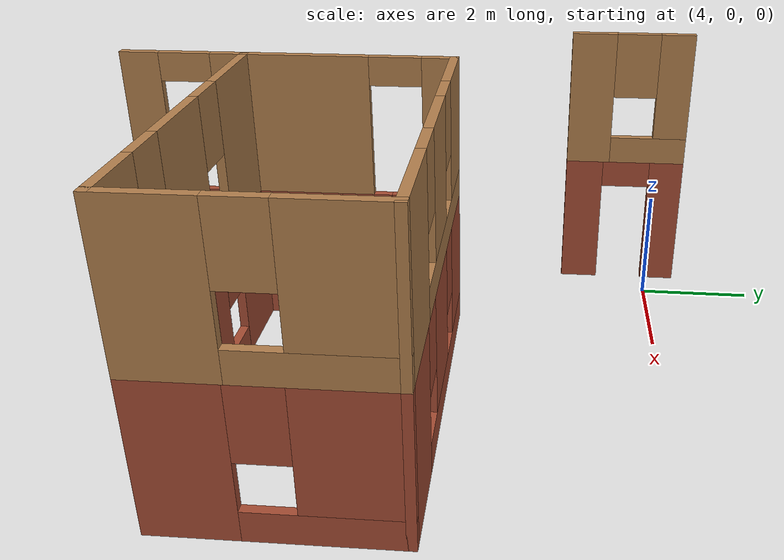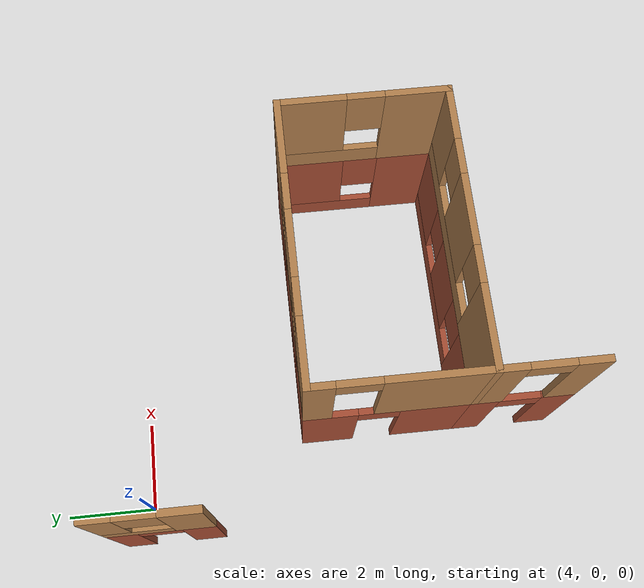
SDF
<sdf version="1.7">
 <model name="House">
  <pose>3.17663 -1.38106 0 0 -0 0</pose>
  <link name="Wall_11">
   <pose>0.125 0.883208 0 0 -0 1.5708</pose>
   <visual name="Wall_11_Visual_0">
    <pose>-0.772291 0 1.25 0 -0 0</pose>
    <geometry><box><size>0.705418 0.15 2.5</size></box></geometry>
    <material>
     <script><uri>file://media/materials/scripts/gazebo.material</uri><name>Gazebo/Bricks</name></script>
     <ambient>1 1 1 1</ambient>
    </material>
    <meta><layer>0</layer></meta>
   </visual>
   <collision name="Wall_11_Collision_0">
    <geometry><box><size>0.705418 0.15 2.5</size></box></geometry>
    <pose>-0.772291 0 1.25 0 -0 0</pose>
   </collision>
   <visual name="Wall_11_Visual_1">
    <pose>0.802709 0 1.25 0 -0 0</pose>
    <geometry><box><size>0.644582 0.15 2.5</size></box></geometry>
    <material>
     <script><uri>file://media/materials/scripts/gazebo.material</uri><name>Gazebo/Bricks</name></script>
     <ambient>1 1 1 1</ambient>
    </material>
    <meta><layer>0</layer></meta>
   </visual>
   <collision name="Wall_11_Collision_1">
    <geometry><box><size>0.644582 0.15 2.5</size></box></geometry>
    <pose>0.802709 0 1.25 0 -0 0</pose>
   </collision>
   <visual name="Wall_11_Visual_2">
    <pose>0.030418 0 2.25 0 -0 0</pose>
    <geometry><box><size>0.9 0.15 0.5</size></box></geometry>
    <material>
     <script><uri>file://media/materials/scripts/gazebo.material</uri><name>Gazebo/Bricks</name></script>
     <ambient>1 1 1 1</ambient>
    </material>
    <meta><layer>0</layer></meta>
   </visual>
   <collision name="Wall_11_Collision_2">
    <geometry><box><size>0.9 0.15 0.5</size></box></geometry>
    <pose>0.030418 0 2.25 0 -0 0</pose>
   </collision>
  </link>
  <link name="Wall_19">
   <pose>2.125 -4.06679 0 0 -0 1.5708</pose>
   <visual name="Wall_19_Visual_0">
    <pose>-1.05035 0 1.25 0 -0 0</pose>
    <geometry><box><size>1.64931 0.15 2.5</size></box></geometry>
    <material>
     <script><uri>file://media/materials/scripts/gazebo.material</uri><name>Gazebo/Bricks</name></script>
     <ambient>1 1 1 1</ambient>
    </material>
    <meta><layer>0</layer></meta>
   </visual>
   <collision name="Wall_19_Collision_0">
    <geometry><box><size>1.64931 0.15 2.5</size></box></geometry>
    <pose>-1.05035 0 1.25 0 -0 0</pose>
   </collision>
   <visual name="Wall_19_Visual_1">
    <pose>1.27465 0 1.25 0 -0 0</pose>
    <geometry><box><size>1.20069 0.15 2.5</size></box></geometry>
    <material>
     <script><uri>file://media/materials/scripts/gazebo.material</uri><name>Gazebo/Bricks</name></script>
     <ambient>1 1 1 1</ambient>
    </material>
    <meta><layer>0</layer></meta>
   </visual>
   <collision name="Wall_19_Collision_1">
    <geometry><box><size>1.20069 0.15 2.5</size></box></geometry>
    <pose>1.27465 0 1.25 0 -0 0</pose>
   </collision>
   <visual name="Wall_19_Visual_2">
    <pose>0.224308 0 2.25 0 -0 0</pose>
    <geometry><box><size>0.9 0.15 0.5</size></box></geometry>
    <material>
     <script><uri>file://media/materials/scripts/gazebo.material</uri><name>Gazebo/Bricks</name></script>
     <ambient>1 1 1 1</ambient>
    </material>
    <meta><layer>0</layer></meta>
   </visual>
   <collision name="Wall_19_Collision_2">
    <geometry><box><size>0.9 0.15 0.5</size></box></geometry>
    <pose>0.224308 0 2.25 0 -0 0</pose>
   </collision>
  </link>
  <link name="Wall_30">
   <pose>2.125 -6.91679 2.5 0 -0 1.5708</pose>
   <visual name="Wall_30_Visual_0">
    <pose>-0.781938 0 1.25 0 -0 0</pose>
    <geometry><box><size>0.686124 0.15 2.5</size></box></geometry>
    <material>
     <script><uri>file://media/materials/scripts/gazebo.material</uri><name>Gazebo/Wood</name></script>
     <ambient>1 1 1 1</ambient>
    </material>
    <meta><layer>1</layer></meta>
   </visual>
   <collision name="Wall_30_Collision_0">
    <geometry><box><size>0.686124 0.15 2.5</size></box></geometry>
    <pose>-0.781938 0 1.25 0 -0 0</pose>
   </collision>
   <visual name="Wall_30_Visual_1">
    <pose>0.793062 0 1.25 0 -0 0</pose>
    <geometry><box><size>0.663876 0.15 2.5</size></box></geometry>
    <material>
     <script><uri>file://media/materials/scripts/gazebo.material</uri><name>Gazebo/Wood</name></script>
     <ambient>1 1 1 1</ambient>
    </material>
    <meta><layer>1</layer></meta>
   </visual>
   <collision name="Wall_30_Collision_1">
    <geometry><box><size>0.663876 0.15 2.5</size></box></geometry>
    <pose>0.793062 0 1.25 0 -0 0</pose>
   </collision>
   <visual name="Wall_30_Visual_2">
    <pose>0.011124 0 2.25 0 -0 0</pose>
    <geometry><box><size>0.9 0.15 0.5</size></box></geometry>
    <material>
     <script><uri>file://media/materials/scripts/gazebo.material</uri><name>Gazebo/Wood</name></script>
     <ambient>1 1 1 1</ambient>
    </material>
    <meta><layer>1</layer></meta>
   </visual>
   <collision name="Wall_30_Collision_2">
    <geometry><box><size>0.9 0.15 0.5</size></box></geometry>
    <pose>0.011124 0 2.25 0 -0 0</pose>
   </collision>
  </link>
  <link name="Wall_31">
   <pose>5.175 -5.86679 2.5 0 -0 0</pose>
   <visual name="Wall_31_Visual_0">
    <pose>-2.22489 0 1.25 0 -0 0</pose>
    <geometry><box><size>1.80023 0.15 2.5</size></box></geometry>
    <material>
     <script><uri>file://media/materials/scripts/gazebo.material</uri><name>Gazebo/Wood</name></script>
     <ambient>1 1 1 1</ambient>
    </material>
    <meta><layer>1</layer></meta>
   </visual>
   <collision name="Wall_31_Collision_0">
    <geometry><box><size>1.80023 0.15 2.5</size></box></geometry>
    <pose>-2.22489 0 1.25 0 -0 0</pose>
   </collision>
   <visual name="Wall_31_Visual_1">
    <pose>0.900113 0 0.25 0 -0 0</pose>
    <geometry><box><size>4.44977 0.15 0.5</size></box></geometry>
    <material>
     <script><uri>file://media/materials/scripts/gazebo.material</uri><name>Gazebo/Wood</name></script>
     <ambient>1 1 1 1</ambient>
    </material>
    <meta><layer>1</layer></meta>
   </visual>
   <collision name="Wall_31_Collision_1">
    <geometry><box><size>4.44977 0.15 0.5</size></box></geometry>
    <pose>0.900113 0 0.25 0 -0 0</pose>
   </collision>
   <visual name="Wall_31_Visual_2">
    <pose>0.261927 0 1.5 0 -0 0</pose>
    <geometry><box><size>1.5734 0.15 2</size></box></geometry>
    <material>
     <script><uri>file://media/materials/scripts/gazebo.material</uri><name>Gazebo/Wood</name></script>
     <ambient>1 1 1 1</ambient>
    </material>
    <meta><layer>1</layer></meta>
   </visual>
   <collision name="Wall_31_Collision_2">
    <geometry><box><size>1.5734 0.15 2</size></box></geometry>
    <pose>0.261927 0 1.5 0 -0 0</pose>
   </collision>
   <visual name="Wall_31_Visual_3">
    <pose>2.48681 0 1.5 0 -0 0</pose>
    <geometry><box><size>1.27637 0.15 2</size></box></geometry>
    <material>
     <script><uri>file://media/materials/scripts/gazebo.material</uri><name>Gazebo/Wood</name></script>
     <ambient>1 1 1 1</ambient>
    </material>
    <meta><layer>1</layer></meta>
   </visual>
   <collision name="Wall_31_Collision_3">
    <geometry><box><size>1.27637 0.15 2</size></box></geometry>
    <pose>2.48681 0 1.5 0 -0 0</pose>
   </collision>
   <visual name="Wall_31_Visual_4">
    <pose>-0.924774 0 1.9 0 -0 0</pose>
    <geometry><box><size>0.8 0.15 1.2</size></box></geometry>
    <material>
     <script><uri>file://media/materials/scripts/gazebo.material</uri><name>Gazebo/Wood</name></script>
     <ambient>1 1 1 1</ambient>
    </material>
    <meta><layer>1</layer></meta>
   </visual>
   <collision name="Wall_31_Collision_4">
    <geometry><box><size>0.8 0.15 1.2</size></box></geometry>
    <pose>-0.924774 0 1.9 0 -0 0</pose>
   </collision>
   <visual name="Wall_31_Visual_5">
    <pose>1.44863 0 1.9 0 -0 0</pose>
    <geometry><box><size>0.8 0.15 1.2</size></box></geometry>
    <material>
     <script><uri>file://media/materials/scripts/gazebo.material</uri><name>Gazebo/Wood</name></script>
     <ambient>1 1 1 1</ambient>
    </material>
    <meta><layer>1</layer></meta>
   </visual>
   <collision name="Wall_31_Collision_5">
    <geometry><box><size>0.8 0.15 1.2</size></box></geometry>
    <pose>1.44863 0 1.9 0 -0 0</pose>
   </collision>
  </link>
  <link name="Wall_32">
   <pose>8.225 -4.06679 2.5 0 -0 1.5708</pose>
   <visual name="Wall_32_Visual_0">
    <pose>-1.1691 0 1.25 0 -0 0</pose>
    <geometry><box><size>1.4118 0.15 2.5</size></box></geometry>
    <material>
     <script><uri>file://media/materials/scripts/gazebo.material</uri><name>Gazebo/Wood</name></script>
     <ambient>1 1 1 1</ambient>
    </material>
    <meta><layer>1</layer></meta>
   </visual>
   <collision name="Wall_32_Collision_0">
    <geometry><box><size>1.4118 0.15 2.5</size></box></geometry>
    <pose>-1.1691 0 1.25 0 -0 0</pose>
   </collision>
   <visual name="Wall_32_Visual_1">
    <pose>0.705899 0 0.25 0 -0 0</pose>
    <geometry><box><size>2.3382 0.15 0.5</size></box></geometry>
    <material>
     <script><uri>file://media/materials/scripts/gazebo.material</uri><name>Gazebo/Wood</name></script>
     <ambient>1 1 1 1</ambient>
    </material>
    <meta><layer>1</layer></meta>
   </visual>
   <collision name="Wall_32_Collision_1">
    <geometry><box><size>2.3382 0.15 0.5</size></box></geometry>
    <pose>0.705899 0 0.25 0 -0 0</pose>
   </collision>
   <visual name="Wall_32_Visual_2">
    <pose>1.1059 0 1.5 0 -0 0</pose>
    <geometry><box><size>1.5382 0.15 2</size></box></geometry>
    <material>
     <script><uri>file://media/materials/scripts/gazebo.material</uri><name>Gazebo/Wood</name></script>
     <ambient>1 1 1 1</ambient>
    </material>
    <meta><layer>1</layer></meta>
   </visual>
   <collision name="Wall_32_Collision_2">
    <geometry><box><size>1.5382 0.15 2</size></box></geometry>
    <pose>1.1059 0 1.5 0 -0 0</pose>
   </collision>
   <visual name="Wall_32_Visual_3">
    <pose>-0.063203 0 1.9 0 -0 0</pose>
    <geometry><box><size>0.8 0.15 1.2</size></box></geometry>
    <material>
     <script><uri>file://media/materials/scripts/gazebo.material</uri><name>Gazebo/Wood</name></script>
     <ambient>1 1 1 1</ambient>
    </material>
    <meta><layer>1</layer></meta>
   </visual>
   <collision name="Wall_32_Collision_3">
    <geometry><box><size>0.8 0.15 1.2</size></box></geometry>
    <pose>-0.063203 0 1.9 0 -0 0</pose>
   </collision>
  </link>
  <link name="Wall_33">
   <pose>5.175 -2.26679 2.5 0 -0 3.14159</pose>
   <visual name="Wall_33_Visual_0">
    <pose>-2.26556 0 1.25 0 -0 0</pose>
    <geometry><box><size>1.71887 0.15 2.5</size></box></geometry>
    <material>
     <script><uri>file://media/materials/scripts/gazebo.material</uri><name>Gazebo/Wood</name></script>
     <ambient>1 1 1 1</ambient>
    </material>
    <meta><layer>1</layer></meta>
   </visual>
   <collision name="Wall_33_Collision_0">
    <geometry><box><size>1.71887 0.15 2.5</size></box></geometry>
    <pose>-2.26556 0 1.25 0 -0 0</pose>
   </collision>
   <visual name="Wall_33_Visual_1">
    <pose>0.859436 0 0.25 0 -0 0</pose>
    <geometry><box><size>4.53113 0.15 0.5</size></box></geometry>
    <material>
     <script><uri>file://media/materials/scripts/gazebo.material</uri><name>Gazebo/Wood</name></script>
     <ambient>1 1 1 1</ambient>
    </material>
    <meta><layer>1</layer></meta>
   </visual>
   <collision name="Wall_33_Collision_1">
    <geometry><box><size>4.53113 0.15 0.5</size></box></geometry>
    <pose>0.859436 0 0.25 0 -0 0</pose>
   </collision>
   <visual name="Wall_33_Visual_2">
    <pose>0.120232 0 1.5 0 -0 0</pose>
    <geometry><box><size>1.45272 0.15 2</size></box></geometry>
    <material>
     <script><uri>file://media/materials/scripts/gazebo.material</uri><name>Gazebo/Wood</name></script>
     <ambient>1 1 1 1</ambient>
    </material>
    <meta><layer>1</layer></meta>
   </visual>
   <collision name="Wall_33_Collision_2">
    <geometry><box><size>1.45272 0.15 2</size></box></geometry>
    <pose>0.120232 0 1.5 0 -0 0</pose>
   </collision>
   <visual name="Wall_33_Visual_3">
    <pose>2.3858 0 1.5 0 -0 0</pose>
    <geometry><box><size>1.47841 0.15 2</size></box></geometry>
    <material>
     <script><uri>file://media/materials/scripts/gazebo.material</uri><name>Gazebo/Wood</name></script>
     <ambient>1 1 1 1</ambient>
    </material>
    <meta><layer>1</layer></meta>
   </visual>
   <collision name="Wall_33_Collision_3">
    <geometry><box><size>1.47841 0.15 2</size></box></geometry>
    <pose>2.3858 0 1.5 0 -0 0</pose>
   </collision>
   <visual name="Wall_33_Visual_4">
    <pose>-1.00613 0 1.9 0 -0 0</pose>
    <geometry><box><size>0.8 0.15 1.2</size></box></geometry>
    <material>
     <script><uri>file://media/materials/scripts/gazebo.material</uri><name>Gazebo/Wood</name></script>
     <ambient>1 1 1 1</ambient>
    </material>
    <meta><layer>1</layer></meta>
   </visual>
   <collision name="Wall_33_Collision_4">
    <geometry><box><size>0.8 0.15 1.2</size></box></geometry>
    <pose>-1.00613 0 1.9 0 -0 0</pose>
   </collision>
   <visual name="Wall_33_Visual_5">
    <pose>1.24659 0 1.9 0 -0 0</pose>
    <geometry><box><size>0.8 0.15 1.2</size></box></geometry>
    <material>
     <script><uri>file://media/materials/scripts/gazebo.material</uri><name>Gazebo/Wood</name></script>
     <ambient>1 1 1 1</ambient>
    </material>
    <meta><layer>1</layer></meta>
   </visual>
   <collision name="Wall_33_Collision_5">
    <geometry><box><size>0.8 0.15 1.2</size></box></geometry>
    <pose>1.24659 0 1.9 0 -0 0</pose>
   </collision>
  </link>
  <link name="Wall_37">
   <pose>0.125 0.883208 2.5 0 -0 1.5708</pose>
   <visual name="Wall_37_Visual_0">
    <pose>-0.714678 0 1.25 0 -0 0</pose>
    <geometry><box><size>0.820644 0.15 2.5</size></box></geometry>
    <material>
     <script><uri>file://media/materials/scripts/gazebo.material</uri><name>Gazebo/Wood</name></script>
     <ambient>1 1 1 1</ambient>
    </material>
    <meta><layer>1</layer></meta>
   </visual>
   <collision name="Wall_37_Collision_0">
    <geometry><box><size>0.820644 0.15 2.5</size></box></geometry>
    <pose>-0.714678 0 1.25 0 -0 0</pose>
   </collision>
   <visual name="Wall_37_Visual_1">
    <pose>0.410322 0 0.25 0 -0 0</pose>
    <geometry><box><size>1.42936 0.15 0.5</size></box></geometry>
    <material>
     <script><uri>file://media/materials/scripts/gazebo.material</uri><name>Gazebo/Wood</name></script>
     <ambient>1 1 1 1</ambient>
    </material>
    <meta><layer>1</layer></meta>
   </visual>
   <collision name="Wall_37_Collision_1">
    <geometry><box><size>1.42936 0.15 0.5</size></box></geometry>
    <pose>0.410322 0 0.25 0 -0 0</pose>
   </collision>
   <visual name="Wall_37_Visual_2">
    <pose>0.810322 0 1.5 0 -0 0</pose>
    <geometry><box><size>0.629356 0.15 2</size></box></geometry>
    <material>
     <script><uri>file://media/materials/scripts/gazebo.material</uri><name>Gazebo/Wood</name></script>
     <ambient>1 1 1 1</ambient>
    </material>
    <meta><layer>1</layer></meta>
   </visual>
   <collision name="Wall_37_Collision_2">
    <geometry><box><size>0.629356 0.15 2</size></box></geometry>
    <pose>0.810322 0 1.5 0 -0 0</pose>
   </collision>
   <visual name="Wall_37_Visual_3">
    <pose>0.095644 0 1.9 0 -0 0</pose>
    <geometry><box><size>0.8 0.15 1.2</size></box></geometry>
    <material>
     <script><uri>file://media/materials/scripts/gazebo.material</uri><name>Gazebo/Wood</name></script>
     <ambient>1 1 1 1</ambient>
    </material>
    <meta><layer>1</layer></meta>
   </visual>
   <collision name="Wall_37_Collision_3">
    <geometry><box><size>0.8 0.15 1.2</size></box></geometry>
    <pose>0.095644 0 1.9 0 -0 0</pose>
   </collision>
  </link>
  <link name="Wall_4">
   <pose>2.125 -6.91679 0 0 -0 1.5708</pose>
   <visual name="Wall_4_Visual_0">
    <pose>-0.764609 0 1.25 0 -0 0</pose>
    <geometry><box><size>0.720782 0.15 2.5</size></box></geometry>
    <material>
     <script><uri>file://media/materials/scripts/gazebo.material</uri><name>Gazebo/Bricks</name></script>
     <ambient>1 1 1 1</ambient>
    </material>
    <meta><layer>0</layer></meta>
   </visual>
   <collision name="Wall_4_Collision_0">
    <geometry><box><size>0.720782 0.15 2.5</size></box></geometry>
    <pose>-0.764609 0 1.25 0 -0 0</pose>
   </collision>
   <visual name="Wall_4_Visual_1">
    <pose>0.810391 0 1.25 0 -0 0</pose>
    <geometry><box><size>0.629218 0.15 2.5</size></box></geometry>
    <material>
     <script><uri>file://media/materials/scripts/gazebo.material</uri><name>Gazebo/Bricks</name></script>
     <ambient>1 1 1 1</ambient>
    </material>
    <meta><layer>0</layer></meta>
   </visual>
   <collision name="Wall_4_Collision_1">
    <geometry><box><size>0.629218 0.15 2.5</size></box></geometry>
    <pose>0.810391 0 1.25 0 -0 0</pose>
   </collision>
   <visual name="Wall_4_Visual_2">
    <pose>0.045782 0 2.25 0 -0 0</pose>
    <geometry><box><size>0.9 0.15 0.5</size></box></geometry>
    <material>
     <script><uri>file://media/materials/scripts/gazebo.material</uri><name>Gazebo/Bricks</name></script>
     <ambient>1 1 1 1</ambient>
    </material>
    <meta><layer>0</layer></meta>
   </visual>
   <collision name="Wall_4_Collision_2">
    <geometry><box><size>0.9 0.15 0.5</size></box></geometry>
    <pose>0.045782 0 2.25 0 -0 0</pose>
   </collision>
  </link>
  <link name="Wall_42">
   <pose>2.125 -4.06679 2.5 0 -0 1.5708</pose>
   <visual name="Wall_42_Visual_0">
    <pose>-0.76166 0 1.25 0 -0 0</pose>
    <geometry><box><size>2.22668 0.15 2.5</size></box></geometry>
    <material>
     <script><uri>file://media/materials/scripts/gazebo.material</uri><name>Gazebo/Wood</name></script>
     <ambient>1 1 1 1</ambient>
    </material>
    <meta><layer>1</layer></meta>
   </visual>
   <collision name="Wall_42_Collision_0">
    <geometry><box><size>2.22668 0.15 2.5</size></box></geometry>
    <pose>-0.76166 0 1.25 0 -0 0</pose>
   </collision>
   <visual name="Wall_42_Visual_1">
    <pose>1.56334 0 1.25 0 -0 0</pose>
    <geometry><box><size>0.623319 0.15 2.5</size></box></geometry>
    <material>
     <script><uri>file://media/materials/scripts/gazebo.material</uri><name>Gazebo/Wood</name></script>
     <ambient>1 1 1 1</ambient>
    </material>
    <meta><layer>1</layer></meta>
   </visual>
   <collision name="Wall_42_Collision_1">
    <geometry><box><size>0.623319 0.15 2.5</size></box></geometry>
    <pose>1.56334 0 1.25 0 -0 0</pose>
   </collision>
   <visual name="Wall_42_Visual_2">
    <pose>0.801681 0 2.25 0 -0 0</pose>
    <geometry><box><size>0.9 0.15 0.5</size></box></geometry>
    <material>
     <script><uri>file://media/materials/scripts/gazebo.material</uri><name>Gazebo/Wood</name></script>
     <ambient>1 1 1 1</ambient>
    </material>
    <meta><layer>1</layer></meta>
   </visual>
   <collision name="Wall_42_Collision_2">
    <geometry><box><size>0.9 0.15 0.5</size></box></geometry>
    <pose>0.801681 0 2.25 0 -0 0</pose>
   </collision>
  </link>
  <link name="Wall_5">
   <pose>5.175 -5.86679 0 0 -0 0</pose>
   <visual name="Wall_5_Visual_0">
    <pose>-2.3286 0 1.25 0 -0 0</pose>
    <geometry><box><size>1.59279 0.15 2.5</size></box></geometry>
    <material>
     <script><uri>file://media/materials/scripts/gazebo.material</uri><name>Gazebo/Bricks</name></script>
     <ambient>0.435294 0.796078 0.67451 1</ambient>
    </material>
    <meta><layer>0</layer></meta>
   </visual>
   <collision name="Wall_5_Collision_0">
    <geometry><box><size>1.59279 0.15 2.5</size></box></geometry>
    <pose>-2.3286 0 1.25 0 -0 0</pose>
   </collision>
   <visual name="Wall_5_Visual_1">
    <pose>0.796396 0 0.25 0 -0 0</pose>
    <geometry><box><size>4.65721 0.15 0.5</size></box></geometry>
    <material>
     <script><uri>file://media/materials/scripts/gazebo.material</uri><name>Gazebo/Bricks</name></script>
     <ambient>0.435294 0.796078 0.67451 1</ambient>
    </material>
    <meta><layer>0</layer></meta>
   </visual>
   <collision name="Wall_5_Collision_1">
    <geometry><box><size>4.65721 0.15 0.5</size></box></geometry>
    <pose>0.796396 0 0.25 0 -0 0</pose>
   </collision>
   <visual name="Wall_5_Visual_2">
    <pose>-0.014366 0 1.5 0 -0 0</pose>
    <geometry><box><size>1.43569 0.15 2</size></box></geometry>
    <material>
     <script><uri>file://media/materials/scripts/gazebo.material</uri><name>Gazebo/Bricks</name></script>
     <ambient>0.435294 0.796078 0.67451 1</ambient>
    </material>
    <meta><layer>0</layer></meta>
   </visual>
   <collision name="Wall_5_Collision_2">
    <geometry><box><size>1.43569 0.15 2</size></box></geometry>
    <pose>-0.014366 0 1.5 0 -0 0</pose>
   </collision>
   <visual name="Wall_5_Visual_3">
    <pose>2.31424 0 1.5 0 -0 0</pose>
    <geometry><box><size>1.62152 0.15 2</size></box></geometry>
    <material>
     <script><uri>file://media/materials/scripts/gazebo.material</uri><name>Gazebo/Bricks</name></script>
     <ambient>0.435294 0.796078 0.67451 1</ambient>
    </material>
    <meta><layer>0</layer></meta>
   </visual>
   <collision name="Wall_5_Collision_3">
    <geometry><box><size>1.62152 0.15 2</size></box></geometry>
    <pose>2.31424 0 1.5 0 -0 0</pose>
   </collision>
   <visual name="Wall_5_Visual_4">
    <pose>-1.13221 0 1.9 0 -0 0</pose>
    <geometry><box><size>0.8 0.15 1.2</size></box></geometry>
    <material>
     <script><uri>file://media/materials/scripts/gazebo.material</uri><name>Gazebo/Bricks</name></script>
     <ambient>0.435294 0.796078 0.67451 1</ambient>
    </material>
    <meta><layer>0</layer></meta>
   </visual>
   <collision name="Wall_5_Collision_4">
    <geometry><box><size>0.8 0.15 1.2</size></box></geometry>
    <pose>-1.13221 0 1.9 0 -0 0</pose>
   </collision>
   <visual name="Wall_5_Visual_5">
    <pose>1.10348 0 1.9 0 -0 0</pose>
    <geometry><box><size>0.8 0.15 1.2</size></box></geometry>
    <material>
     <script><uri>file://media/materials/scripts/gazebo.material</uri><name>Gazebo/Bricks</name></script>
     <ambient>0.435294 0.796078 0.67451 1</ambient>
    </material>
    <meta><layer>0</layer></meta>
   </visual>
   <collision name="Wall_5_Collision_5">
    <geometry><box><size>0.8 0.15 1.2</size></box></geometry>
    <pose>1.10348 0 1.9 0 -0 0</pose>
   </collision>
  </link>
  <link name="Wall_6">
   <pose>8.225 -4.06679 0 0 -0 1.5708</pose>
   <visual name="Wall_6_Visual_0">
    <pose>-1.18391 0 1.25 0 -0 0</pose>
    <geometry><box><size>1.38217 0.15 2.5</size></box></geometry>
    <material>
     <script><uri>file://media/materials/scripts/gazebo.material</uri><name>Gazebo/Bricks</name></script>
     <ambient>0.435294 0.796078 0.67451 1</ambient>
    </material>
    <meta><layer>0</layer></meta>
   </visual>
   <collision name="Wall_6_Collision_0">
    <geometry><box><size>1.38217 0.15 2.5</size></box></geometry>
    <pose>-1.18391 0 1.25 0 -0 0</pose>
   </collision>
   <visual name="Wall_6_Visual_1">
    <pose>0.691087 0 0.25 0 -0 0</pose>
    <geometry><box><size>2.36783 0.15 0.5</size></box></geometry>
    <material>
     <script><uri>file://media/materials/scripts/gazebo.material</uri><name>Gazebo/Bricks</name></script>
     <ambient>0.435294 0.796078 0.67451 1</ambient>
    </material>
    <meta><layer>0</layer></meta>
   </visual>
   <collision name="Wall_6_Collision_1">
    <geometry><box><size>2.36783 0.15 0.5</size></box></geometry>
    <pose>0.691087 0 0.25 0 -0 0</pose>
   </collision>
   <visual name="Wall_6_Visual_2">
    <pose>1.09109 0 1.5 0 -0 0</pose>
    <geometry><box><size>1.56783 0.15 2</size></box></geometry>
    <material>
     <script><uri>file://media/materials/scripts/gazebo.material</uri><name>Gazebo/Bricks</name></script>
     <ambient>0.435294 0.796078 0.67451 1</ambient>
    </material>
    <meta><layer>0</layer></meta>
   </visual>
   <collision name="Wall_6_Collision_2">
    <geometry><box><size>1.56783 0.15 2</size></box></geometry>
    <pose>1.09109 0 1.5 0 -0 0</pose>
   </collision>
   <visual name="Wall_6_Visual_3">
    <pose>-0.092826 0 1.9 0 -0 0</pose>
    <geometry><box><size>0.8 0.15 1.2</size></box></geometry>
    <material>
     <script><uri>file://media/materials/scripts/gazebo.material</uri><name>Gazebo/Bricks</name></script>
     <ambient>0.435294 0.796078 0.67451 1</ambient>
    </material>
    <meta><layer>0</layer></meta>
   </visual>
   <collision name="Wall_6_Collision_3">
    <geometry><box><size>0.8 0.15 1.2</size></box></geometry>
    <pose>-0.092826 0 1.9 0 -0 0</pose>
   </collision>
  </link>
  <link name="Wall_7">
   <pose>5.175 -2.26679 0 0 -0 3.14159</pose>
   <visual name="Wall_7_Visual_0">
    <pose>-2.32184 0 1.25 0 -0 0</pose>
    <geometry><box><size>1.60631 0.15 2.5</size></box></geometry>
    <material>
     <script><uri>file://media/materials/scripts/gazebo.material</uri><name>Gazebo/Bricks</name></script>
     <ambient>0.996078 0.47451 0.0196078 1</ambient>
    </material>
    <meta><layer>0</layer></meta>
   </visual>
   <collision name="Wall_7_Collision_0">
    <geometry><box><size>1.60631 0.15 2.5</size></box></geometry>
    <pose>-2.32184 0 1.25 0 -0 0</pose>
   </collision>
   <visual name="Wall_7_Visual_1">
    <pose>0.803157 0 0.25 0 -0 0</pose>
    <geometry><box><size>4.64369 0.15 0.5</size></box></geometry>
    <material>
     <script><uri>file://media/materials/scripts/gazebo.material</uri><name>Gazebo/Bricks</name></script>
     <ambient>0.996078 0.47451 0.0196078 1</ambient>
    </material>
    <meta><layer>0</layer></meta>
   </visual>
   <collision name="Wall_7_Collision_1">
    <geometry><box><size>4.64369 0.15 0.5</size></box></geometry>
    <pose>0.803157 0 0.25 0 -0 0</pose>
   </collision>
   <visual name="Wall_7_Visual_2">
    <pose>0.059992 0 1.5 0 -0 0</pose>
    <geometry><box><size>1.55736 0.15 2</size></box></geometry>
    <material>
     <script><uri>file://media/materials/scripts/gazebo.material</uri><name>Gazebo/Bricks</name></script>
     <ambient>0.996078 0.47451 0.0196078 1</ambient>
    </material>
    <meta><layer>0</layer></meta>
   </visual>
   <collision name="Wall_7_Collision_2">
    <geometry><box><size>1.55736 0.15 2</size></box></geometry>
    <pose>0.059992 0 1.5 0 -0 0</pose>
   </collision>
   <visual name="Wall_7_Visual_3">
    <pose>2.38184 0 1.5 0 -0 0</pose>
    <geometry><box><size>1.48633 0.15 2</size></box></geometry>
    <material>
     <script><uri>file://media/materials/scripts/gazebo.material</uri><name>Gazebo/Bricks</name></script>
     <ambient>0.996078 0.47451 0.0196078 1</ambient>
    </material>
    <meta><layer>0</layer></meta>
   </visual>
   <collision name="Wall_7_Collision_3">
    <geometry><box><size>1.48633 0.15 2</size></box></geometry>
    <pose>2.38184 0 1.5 0 -0 0</pose>
   </collision>
   <visual name="Wall_7_Visual_4">
    <pose>-1.11869 0 1.9 0 -0 0</pose>
    <geometry><box><size>0.8 0.15 1.2</size></box></geometry>
    <material>
     <script><uri>file://media/materials/scripts/gazebo.material</uri><name>Gazebo/Bricks</name></script>
     <ambient>0.996078 0.47451 0.0196078 1</ambient>
    </material>
    <meta><layer>0</layer></meta>
   </visual>
   <collision name="Wall_7_Collision_4">
    <geometry><box><size>0.8 0.15 1.2</size></box></geometry>
    <pose>-1.11869 0 1.9 0 -0 0</pose>
   </collision>
   <visual name="Wall_7_Visual_5">
    <pose>1.23867 0 1.9 0 -0 0</pose>
    <geometry><box><size>0.8 0.15 1.2</size></box></geometry>
    <material>
     <script><uri>file://media/materials/scripts/gazebo.material</uri><name>Gazebo/Bricks</name></script>
     <ambient>0.996078 0.47451 0.0196078 1</ambient>
    </material>
    <meta><layer>0</layer></meta>
   </visual>
   <collision name="Wall_7_Collision_5">
    <geometry><box><size>0.8 0.15 1.2</size></box></geometry>
    <pose>1.23867 0 1.9 0 -0 0</pose>
   </collision>
  </link>
  <static>1</static>
 </model>
</sdf>
